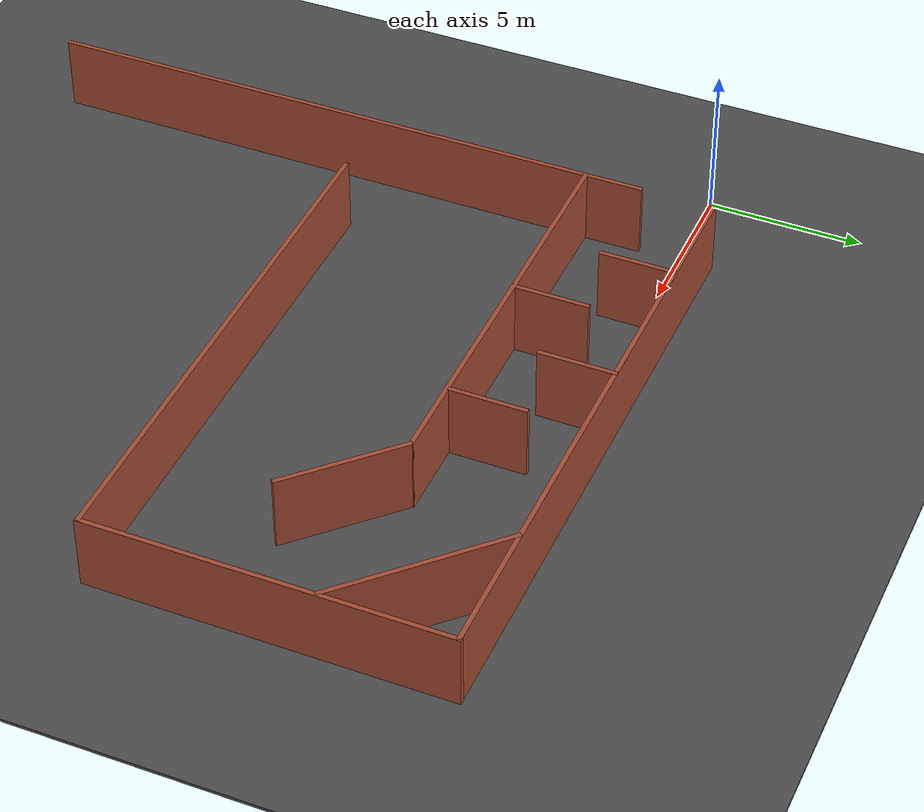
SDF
<sdf version="1.6">
 <world name="default">
  <light name="sun" type="directional">
   <pose>0 0 10 0 -0 0</pose>
   <diffuse>0.8 0.8 0.8 1</diffuse>
   <specular>0.2 0.2 0.2 1</specular>
   <attenuation>
    <range>1000</range>
    <constant>0.9</constant>
    <linear>0.01</linear>
    <quadratic>0.001</quadratic>
   </attenuation>
   <direction>-0.5 0.1 -0.9</direction>
  </light>
  <model name="ground_plane">
   <static>1</static>
   <link name="link">
    <collision name="collision">
     <geometry><plane><normal>0 0 1</normal><size>100 100</size></plane></geometry>
     <surface><friction><ode><mu>100</mu><mu2>50</mu2></ode></friction></surface>
    </collision>
    <visual name="visual">
     <cast_shadows>0</cast_shadows>
     <geometry><plane><normal>0 0 1</normal><size>100 100</size></plane></geometry>
     <material>
      <script><uri>file://media/materials/scripts/gazebo.material</uri><name>Gazebo/Grey</name></script>
     </material>
    </visual>
   </link>
  </model>
  <gravity>0 0 -9.8</gravity>
  <magnetic_field>6e-06 2.3e-05 -4.2e-05</magnetic_field>
  <atmosphere type="adiabatic"/>
  <physics name="default_physics" default="0" type="ode">
   <max_step_size>0.001</max_step_size>
   <real_time_factor>1</real_time_factor>
   <real_time_update_rate>1000</real_time_update_rate>
  </physics>
  <scene><ambient>0.4 0.4 0.4 1</ambient><background>0.7 0.7 0.7 1</background><shadows>1</shadows></scene>
  <spherical_coordinates>
   <surface_model>EARTH_WGS84</surface_model>
   <latitude_deg>0</latitude_deg>
   <longitude_deg>0</longitude_deg>
   <elevation>0</elevation>
   <heading_deg>0</heading_deg>
  </spherical_coordinates>
  <model name="asphalt_plane">
   <static>1</static>
   <link name="link">
    <collision name="collision"><geometry><box><size>74.4702 80.6098 0.1</size></box></geometry></collision>
    <visual name="visual">
     <cast_shadows>0</cast_shadows>
     <geometry><box><size>74.4702 80.6098 0.1</size></box></geometry>
     <material>
      <script>
       <uri>model://asphalt_plane/materials/scripts</uri>
       <uri>model://asphalt_plane/materials/textures</uri>
       <name>vrc/asphalt</name>
      </script>
     </material>
    </visual>
   </link>
   <pose>10.9493 -7.43707 0 0 -0 0</pose>
  </model>
  <model name="arena_walls">
   <link name="Wall_10">
    <pose>-6.5 3.71248 0 0 0 -1.5708</pose>
    <inertial>
     <mass>1</mass>
     <inertia><ixx>1</ixx><ixy>0</ixy><ixz>0</ixz><iyy>1</iyy><iyz>0</iyz><izz>1</izz></inertia>
    </inertial>
    <visual name="Wall_10_Visual">
     <pose>0 0 1.25 0 -0 0</pose>
     <geometry><box><size>2.5 0.15 2.5</size></box></geometry>
     <material>
      <script><uri>file://media/materials/scripts/gazebo.material</uri><name>Gazebo/Bricks</name></script>
      <ambient>1 1 1 1</ambient>
      <shader type="pixel"><normal_map>__default__</normal_map></shader>
      <diffuse>1 1 1 1</diffuse>
      <specular>0.2 0.2 0.2 1</specular>
      <emissive>0 0 0 1</emissive>
     </material>
     <meta><layer>0</layer></meta>
    </visual>
    <collision name="Wall_10_Collision">
     <pose>0 0 1.25 0 -0 0</pose>
     <geometry><box><size>2.5 0.15 2.5</size></box></geometry>
     <surface>
      <friction>
       <ode><mu>1</mu><mu2>1</mu2><fdir1>0 0 0</fdir1><slip1>0</slip1><slip2>0</slip2></ode>
       <torsional>
        <coefficient>1</coefficient>
        <patch_radius>0</patch_radius>
        <surface_radius>0</surface_radius>
        <use_patch_radius>1</use_patch_radius>
        <ode><slip>0</slip></ode>
       </torsional>
      </friction>
      <bounce><restitution_coefficient>0</restitution_coefficient><threshold>1e+06</threshold></bounce>
      <contact>
       <collide_without_contact>0</collide_without_contact>
       <collide_without_contact_bitmask>1</collide_without_contact_bitmask>
       <collide_bitmask>1</collide_bitmask>
       <ode>
        <soft_cfm>0</soft_cfm>
        <soft_erp>0.2</soft_erp>
        <kp>1e+13</kp>
        <kd>1</kd>
        <max_vel>0.01</max_vel>
        <min_depth>0</min_depth>
       </ode>
       <bullet>
        <split_impulse>1</split_impulse>
        <split_impulse_penetration_threshold>-0.01</split_impulse_penetration_threshold>
        <soft_cfm>0</soft_cfm>
        <soft_erp>0.2</soft_erp>
        <kp>1e+13</kp>
        <kd>1</kd>
       </bullet>
      </contact>
     </surface>
    </collision>
   </link>
   <link name="Wall_10_clone_0">
    <pose>-1.5 3.70851 0 0 0 -1.5708</pose>
    <inertial>
     <mass>1</mass>
     <inertia><ixx>1</ixx><ixy>0</ixy><ixz>0</ixz><iyy>1</iyy><iyz>0</iyz><izz>1</izz></inertia>
    </inertial>
    <visual name="Wall_10_Visual">
     <pose>0 0 1.25 0 -0 0</pose>
     <geometry><box><size>2.5 0.15 2.5</size></box></geometry>
     <material>
      <script><uri>file://media/materials/scripts/gazebo.material</uri><name>Gazebo/Bricks</name></script>
      <ambient>1 1 1 1</ambient>
      <shader type="pixel"><normal_map>__default__</normal_map></shader>
      <diffuse>1 1 1 1</diffuse>
      <specular>0.2 0.2 0.2 1</specular>
      <emissive>0 0 0 1</emissive>
     </material>
     <meta><layer>0</layer></meta>
    </visual>
    <collision name="Wall_10_Collision">
     <pose>0 0 1.25 0 -0 0</pose>
     <geometry><box><size>2.5 0.15 2.5</size></box></geometry>
     <surface>
      <friction>
       <ode><mu>1</mu><mu2>1</mu2><fdir1>0 0 0</fdir1><slip1>0</slip1><slip2>0</slip2></ode>
       <torsional>
        <coefficient>1</coefficient>
        <patch_radius>0</patch_radius>
        <surface_radius>0</surface_radius>
        <use_patch_radius>1</use_patch_radius>
        <ode><slip>0</slip></ode>
       </torsional>
      </friction>
      <bounce><restitution_coefficient>0</restitution_coefficient><threshold>1e+06</threshold></bounce>
      <contact>
       <collide_without_contact>0</collide_without_contact>
       <collide_without_contact_bitmask>1</collide_without_contact_bitmask>
       <collide_bitmask>1</collide_bitmask>
       <ode>
        <soft_cfm>0</soft_cfm>
        <soft_erp>0.2</soft_erp>
        <kp>1e+13</kp>
        <kd>1</kd>
        <max_vel>0.01</max_vel>
        <min_depth>0</min_depth>
       </ode>
       <bullet>
        <split_impulse>1</split_impulse>
        <split_impulse_penetration_threshold>-0.01</split_impulse_penetration_threshold>
        <soft_cfm>0</soft_cfm>
        <soft_erp>0.2</soft_erp>
        <kp>1e+13</kp>
        <kd>1</kd>
       </bullet>
      </contact>
     </surface>
    </collision>
   </link>
   <link name="Wall_10_clone_0_clone">
    <pose>-4 1.85792 0 0 0 -1.5708</pose>
    <inertial>
     <mass>1</mass>
     <inertia><ixx>1</ixx><ixy>0</ixy><ixz>0</ixz><iyy>1</iyy><iyz>0</iyz><izz>1</izz></inertia>
    </inertial>
    <visual name="Wall_10_Visual">
     <pose>0 0 1.25 0 -0 0</pose>
     <geometry><box><size>2.5 0.15 2.5</size></box></geometry>
     <material>
      <script><uri>file://media/materials/scripts/gazebo.material</uri><name>Gazebo/Bricks</name></script>
      <ambient>1 1 1 1</ambient>
      <shader type="pixel"><normal_map>__default__</normal_map></shader>
      <diffuse>1 1 1 1</diffuse>
      <specular>0.2 0.2 0.2 1</specular>
      <emissive>0 0 0 1</emissive>
     </material>
     <meta><layer>0</layer></meta>
    </visual>
    <collision name="Wall_10_Collision">
     <pose>0 0 1.25 0 -0 0</pose>
     <geometry><box><size>2.5 0.15 2.5</size></box></geometry>
     <surface>
      <friction>
       <ode><mu>1</mu><mu2>1</mu2><fdir1>0 0 0</fdir1><slip1>0</slip1><slip2>0</slip2></ode>
       <torsional>
        <coefficient>1</coefficient>
        <patch_radius>0</patch_radius>
        <surface_radius>0</surface_radius>
        <use_patch_radius>1</use_patch_radius>
        <ode><slip>0</slip></ode>
       </torsional>
      </friction>
      <bounce><restitution_coefficient>0</restitution_coefficient><threshold>1e+06</threshold></bounce>
      <contact>
       <collide_without_contact>0</collide_without_contact>
       <collide_without_contact_bitmask>1</collide_without_contact_bitmask>
       <collide_bitmask>1</collide_bitmask>
       <ode>
        <soft_cfm>0</soft_cfm>
        <soft_erp>0.2</soft_erp>
        <kp>1e+13</kp>
        <kd>1</kd>
        <max_vel>0.01</max_vel>
        <min_depth>0</min_depth>
       </ode>
       <bullet>
        <split_impulse>1</split_impulse>
        <split_impulse_penetration_threshold>-0.01</split_impulse_penetration_threshold>
        <soft_cfm>0</soft_cfm>
        <soft_erp>0.2</soft_erp>
        <kp>1e+13</kp>
        <kd>1</kd>
       </bullet>
      </contact>
     </surface>
    </collision>
   </link>
   <link name="Wall_10_clone_0_clone_2">
    <pose>1 1.94635 0 0 0 -1.5708</pose>
    <inertial>
     <mass>1</mass>
     <inertia><ixx>1</ixx><ixy>0</ixy><ixz>0</ixz><iyy>1</iyy><iyz>0</iyz><izz>1</izz></inertia>
    </inertial>
    <visual name="Wall_10_Visual">
     <pose>0 0 1.25 0 -0 0</pose>
     <geometry><box><size>2.5 0.15 2.5</size></box></geometry>
     <material>
      <script><uri>file://media/materials/scripts/gazebo.material</uri><name>Gazebo/Bricks</name></script>
      <ambient>1 1 1 1</ambient>
      <shader type="pixel"><normal_map>__default__</normal_map></shader>
      <diffuse>1 1 1 1</diffuse>
      <specular>0.2 0.2 0.2 1</specular>
      <emissive>0 0 0 1</emissive>
     </material>
     <meta><layer>0</layer></meta>
    </visual>
    <collision name="Wall_10_Collision">
     <pose>0 0 1.25 0 -0 0</pose>
     <geometry><box><size>2.5 0.15 2.5</size></box></geometry>
     <surface>
      <friction>
       <ode><mu>1</mu><mu2>1</mu2><fdir1>0 0 0</fdir1><slip1>0</slip1><slip2>0</slip2></ode>
       <torsional>
        <coefficient>1</coefficient>
        <patch_radius>0</patch_radius>
        <surface_radius>0</surface_radius>
        <use_patch_radius>1</use_patch_radius>
        <ode><slip>0</slip></ode>
       </torsional>
      </friction>
      <bounce><restitution_coefficient>0</restitution_coefficient><threshold>1e+06</threshold></bounce>
      <contact>
       <collide_without_contact>0</collide_without_contact>
       <collide_without_contact_bitmask>1</collide_without_contact_bitmask>
       <collide_bitmask>1</collide_bitmask>
       <ode>
        <soft_cfm>0</soft_cfm>
        <soft_erp>0.2</soft_erp>
        <kp>1e+13</kp>
        <kd>1</kd>
        <max_vel>0.01</max_vel>
        <min_depth>0</min_depth>
       </ode>
       <bullet>
        <split_impulse>1</split_impulse>
        <split_impulse_penetration_threshold>-0.01</split_impulse_penetration_threshold>
        <soft_cfm>0</soft_cfm>
        <soft_erp>0.2</soft_erp>
        <kp>1e+13</kp>
        <kd>1</kd>
       </bullet>
      </contact>
     </surface>
    </collision>
   </link>
   <link name="Wall_10_clone_0_clone_2_clone">
    <pose>7.82658 2.81474 0 0 0 -0.78</pose>
    <inertial>
     <mass>2.38801</mass>
     <inertia><ixx>1.24823</ixx><ixy>0</ixy><ixz>0</ixz><iyy>8.33641</iyy><iyz>0</iyz><izz>7.09713</izz></inertia>
    </inertial>
    <visual name="Wall_10_Visual">
     <pose>0 0 1.25 0 -0 0</pose>
     <geometry><box><size>5.97003 0.15 2.5</size></box></geometry>
     <material>
      <script><uri>file://media/materials/scripts/gazebo.material</uri><name>Gazebo/Bricks</name></script>
      <ambient>1 1 1 1</ambient>
      <shader type="pixel"><normal_map>__default__</normal_map></shader>
      <diffuse>1 1 1 1</diffuse>
      <specular>0.2 0.2 0.2 1</specular>
      <emissive>0 0 0 1</emissive>
     </material>
     <meta><layer>0</layer></meta>
    </visual>
    <collision name="Wall_10_Collision">
     <pose>0 0 1.25 0 -0 0</pose>
     <geometry><box><size>5.97003 0.15 2.5</size></box></geometry>
     <surface>
      <friction>
       <ode><mu>1</mu><mu2>1</mu2><fdir1>0 0 0</fdir1><slip1>0</slip1><slip2>0</slip2></ode>
       <torsional>
        <coefficient>1</coefficient>
        <patch_radius>0</patch_radius>
        <surface_radius>0</surface_radius>
        <use_patch_radius>1</use_patch_radius>
        <ode><slip>0</slip></ode>
       </torsional>
      </friction>
      <bounce><restitution_coefficient>0</restitution_coefficient><threshold>1e+06</threshold></bounce>
      <contact>
       <collide_without_contact>0</collide_without_contact>
       <collide_without_contact_bitmask>1</collide_without_contact_bitmask>
       <collide_bitmask>1</collide_bitmask>
       <ode>
        <soft_cfm>0</soft_cfm>
        <soft_erp>0.2</soft_erp>
        <kp>1e+13</kp>
        <kd>1</kd>
        <max_vel>0.01</max_vel>
        <min_depth>0</min_depth>
       </ode>
       <bullet>
        <split_impulse>1</split_impulse>
        <split_impulse_penetration_threshold>-0.01</split_impulse_penetration_threshold>
        <soft_cfm>0</soft_cfm>
        <soft_erp>0.2</soft_erp>
        <kp>1e+13</kp>
        <kd>1</kd>
       </bullet>
      </contact>
     </surface>
    </collision>
   </link>
   <link name="Wall_10_clone_0_clone_2_clone_clone">
    <pose>5.00738 -0.779801 0 0 0 -0.78</pose>
    <inertial>
     <mass>1.67623</mass>
     <inertia><ixx>0.876179</ixx><ixy>0</ixy><ixz>0</ixz><iyy>3.32605</iyy><iyz>0</iyz><izz>2.45615</izz></inertia>
    </inertial>
    <visual name="Wall_10_Visual">
     <pose>0 0 1.25 0 -0 0</pose>
     <geometry><box><size>4.19058 0.15 2.5</size></box></geometry>
     <material>
      <script><uri>file://media/materials/scripts/gazebo.material</uri><name>Gazebo/Bricks</name></script>
      <ambient>1 1 1 1</ambient>
      <shader type="pixel"><normal_map>__default__</normal_map></shader>
      <diffuse>1 1 1 1</diffuse>
      <specular>0.2 0.2 0.2 1</specular>
      <emissive>0 0 0 1</emissive>
     </material>
     <meta><layer>0</layer></meta>
    </visual>
    <collision name="Wall_10_Collision">
     <pose>0 0 1.25 0 -0 0</pose>
     <geometry><box><size>4.19058 0.15 2.5</size></box></geometry>
     <surface>
      <friction>
       <ode><mu>1</mu><mu2>1</mu2><fdir1>0 0 0</fdir1><slip1>0</slip1><slip2>0</slip2></ode>
       <torsional>
        <coefficient>1</coefficient>
        <patch_radius>0</patch_radius>
        <surface_radius>0</surface_radius>
        <use_patch_radius>1</use_patch_radius>
        <ode><slip>0</slip></ode>
       </torsional>
      </friction>
      <bounce><restitution_coefficient>0</restitution_coefficient><threshold>1e+06</threshold></bounce>
      <contact>
       <collide_without_contact>0</collide_without_contact>
       <collide_without_contact_bitmask>1</collide_without_contact_bitmask>
       <collide_bitmask>1</collide_bitmask>
       <ode>
        <soft_cfm>0</soft_cfm>
        <soft_erp>0.2</soft_erp>
        <kp>1e+13</kp>
        <kd>1</kd>
        <max_vel>0.01</max_vel>
        <min_depth>0</min_depth>
       </ode>
       <bullet>
        <split_impulse>1</split_impulse>
        <split_impulse_penetration_threshold>-0.01</split_impulse_penetration_threshold>
        <soft_cfm>0</soft_cfm>
        <soft_erp>0.2</soft_erp>
        <kp>1e+13</kp>
        <kd>1</kd>
       </bullet>
      </contact>
     </surface>
    </collision>
   </link>
   <link name="Wall_13">
    <pose>-3.19445 0.669302 0 0 -0 3.14159</pose>
    <inertial>
     <mass>1.35897</mass>
     <inertia><ixx>0.710346</ixx><ixy>0</ixy><ixz>0</ixz><iyy>21.6225</iyy><iyz>0</iyz><izz>20.9172</izz></inertia>
    </inertial>
    <visual name="Wall_13_Visual">
     <pose>0 0 1.25 0 -0 0</pose>
     <geometry><box><size>13.5897 0.15 2.5</size></box></geometry>
     <material>
      <script><uri>file://media/materials/scripts/gazebo.material</uri><name>Gazebo/Bricks</name></script>
      <ambient>1 1 1 1</ambient>
      <shader type="pixel"><normal_map>__default__</normal_map></shader>
      <diffuse>1 1 1 1</diffuse>
      <specular>0.2 0.2 0.2 1</specular>
      <emissive>0 0 0 1</emissive>
     </material>
     <meta><layer>0</layer></meta>
    </visual>
    <collision name="Wall_13_Collision">
     <pose>0 0 1.25 0 -0 0</pose>
     <geometry><box><size>13.5897 0.15 2.5</size></box></geometry>
     <surface>
      <friction>
       <ode><mu>1</mu><mu2>1</mu2><fdir1>0 0 0</fdir1><slip1>0</slip1><slip2>0</slip2></ode>
       <torsional>
        <coefficient>1</coefficient>
        <patch_radius>0</patch_radius>
        <surface_radius>0</surface_radius>
        <use_patch_radius>1</use_patch_radius>
        <ode><slip>0</slip></ode>
       </torsional>
      </friction>
      <bounce><restitution_coefficient>0</restitution_coefficient><threshold>1e+06</threshold></bounce>
      <contact>
       <collide_without_contact>0</collide_without_contact>
       <collide_without_contact_bitmask>1</collide_without_contact_bitmask>
       <collide_bitmask>1</collide_bitmask>
       <ode>
        <soft_cfm>0</soft_cfm>
        <soft_erp>0.2</soft_erp>
        <kp>1e+13</kp>
        <kd>1</kd>
        <max_vel>0.01</max_vel>
        <min_depth>0</min_depth>
       </ode>
       <bullet>
        <split_impulse>1</split_impulse>
        <split_impulse_penetration_threshold>-0.01</split_impulse_penetration_threshold>
        <soft_cfm>0</soft_cfm>
        <soft_erp>0.2</soft_erp>
        <kp>1e+13</kp>
        <kd>1</kd>
       </bullet>
      </contact>
     </surface>
    </collision>
   </link>
   <link name="Wall_2">
    <pose>0.003794 4.89766 0 0 -0 0</pose>
    <inertial>
     <mass>1</mass>
     <inertia><ixx>1</ixx><ixy>0</ixy><ixz>0</ixz><iyy>1</iyy><iyz>0</iyz><izz>1</izz></inertia>
    </inertial>
    <visual name="Wall_2_Visual">
     <pose>0 0 1.25 0 -0 0</pose>
     <geometry><box><size>20 0.15 2.5</size></box></geometry>
     <material>
      <script><uri>file://media/materials/scripts/gazebo.material</uri><name>Gazebo/Bricks</name></script>
      <ambient>1 1 1 1</ambient>
      <shader type="pixel"><normal_map>__default__</normal_map></shader>
      <diffuse>1 1 1 1</diffuse>
      <specular>0.2 0.2 0.2 1</specular>
      <emissive>0 0 0 1</emissive>
     </material>
     <meta><layer>0</layer></meta>
    </visual>
    <collision name="Wall_2_Collision">
     <pose>0 0 1.25 0 -0 0</pose>
     <geometry><box><size>20 0.15 2.5</size></box></geometry>
     <surface>
      <friction>
       <ode><mu>1</mu><mu2>1</mu2><fdir1>0 0 0</fdir1><slip1>0</slip1><slip2>0</slip2></ode>
       <torsional>
        <coefficient>1</coefficient>
        <patch_radius>0</patch_radius>
        <surface_radius>0</surface_radius>
        <use_patch_radius>1</use_patch_radius>
        <ode><slip>0</slip></ode>
       </torsional>
      </friction>
      <bounce><restitution_coefficient>0</restitution_coefficient><threshold>1e+06</threshold></bounce>
      <contact>
       <collide_without_contact>0</collide_without_contact>
       <collide_without_contact_bitmask>1</collide_without_contact_bitmask>
       <collide_bitmask>1</collide_bitmask>
       <ode>
        <soft_cfm>0</soft_cfm>
        <soft_erp>0.2</soft_erp>
        <kp>1e+13</kp>
        <kd>1</kd>
        <max_vel>0.01</max_vel>
        <min_depth>0</min_depth>
       </ode>
       <bullet>
        <split_impulse>1</split_impulse>
        <split_impulse_penetration_threshold>-0.01</split_impulse_penetration_threshold>
        <soft_cfm>0</soft_cfm>
        <soft_erp>0.2</soft_erp>
        <kp>1e+13</kp>
        <kd>1</kd>
       </bullet>
      </contact>
     </surface>
    </collision>
   </link>
   <link name="Wall_2_clone">
    <pose>1.24205 -6.48449 0 0 -0 0</pose>
    <inertial>
     <mass>1</mass>
     <inertia><ixx>1</ixx><ixy>0</ixy><ixz>0</ixz><iyy>1</iyy><iyz>0</iyz><izz>1</izz></inertia>
    </inertial>
    <visual name="Wall_2_Visual">
     <pose>0 0 1.25 0 -0 0</pose>
     <geometry><box><size>17.5 0.15 2.5</size></box></geometry>
     <material>
      <script><uri>file://media/materials/scripts/gazebo.material</uri><name>Gazebo/Bricks</name></script>
      <ambient>1 1 1 1</ambient>
      <shader type="pixel"><normal_map>__default__</normal_map></shader>
      <diffuse>1 1 1 1</diffuse>
      <specular>0.2 0.2 0.2 1</specular>
      <emissive>0 0 0 1</emissive>
     </material>
     <meta><layer>0</layer></meta>
    </visual>
    <collision name="Wall_2_Collision">
     <pose>0 0 1.25 0 -0 0</pose>
     <geometry><box><size>17.5 0.15 2.5</size></box></geometry>
     <surface>
      <friction>
       <ode><mu>1</mu><mu2>1</mu2><fdir1>0 0 0</fdir1><slip1>0</slip1><slip2>0</slip2></ode>
       <torsional>
        <coefficient>1</coefficient>
        <patch_radius>0</patch_radius>
        <surface_radius>0</surface_radius>
        <use_patch_radius>1</use_patch_radius>
        <ode><slip>0</slip></ode>
       </torsional>
      </friction>
      <bounce><restitution_coefficient>0</restitution_coefficient><threshold>1e+06</threshold></bounce>
      <contact>
       <collide_without_contact>0</collide_without_contact>
       <collide_without_contact_bitmask>1</collide_without_contact_bitmask>
       <collide_bitmask>1</collide_bitmask>
       <ode>
        <soft_cfm>0</soft_cfm>
        <soft_erp>0.2</soft_erp>
        <kp>1e+13</kp>
        <kd>1</kd>
        <max_vel>0.01</max_vel>
        <min_depth>0</min_depth>
       </ode>
       <bullet>
        <split_impulse>1</split_impulse>
        <split_impulse_penetration_threshold>-0.01</split_impulse_penetration_threshold>
        <soft_cfm>0</soft_cfm>
        <soft_erp>0.2</soft_erp>
        <kp>1e+13</kp>
        <kd>1</kd>
       </bullet>
      </contact>
     </surface>
    </collision>
   </link>
   <link name="Wall_4">
    <pose>9.94646 -0.804145 0 0 0 -1.5708</pose>
    <inertial>
     <inertia><ixx>0</ixx><ixy>0</ixy><ixz>0</ixz><iyy>0</iyy><iyz>0</iyz><izz>0</izz></inertia>
     <mass>0</mass>
    </inertial>
    <visual name="Wall_4_Visual">
     <pose>0 0 1.25 0 -0 0</pose>
     <geometry><box><size>11.5685 0.15 2.5</size></box></geometry>
     <material>
      <script><uri>file://media/materials/scripts/gazebo.material</uri><name>Gazebo/Bricks</name></script>
      <ambient>1 1 1 1</ambient>
      <shader type="pixel"><normal_map>__default__</normal_map></shader>
      <diffuse>1 1 1 1</diffuse>
      <specular>0.2 0.2 0.2 1</specular>
      <emissive>0 0 0 1</emissive>
     </material>
     <meta><layer>0</layer></meta>
    </visual>
    <collision name="Wall_4_Collision">
     <pose>0 0 1.25 0 -0 0</pose>
     <geometry><box><size>11.5685 0.15 2.5</size></box></geometry>
     <surface>
      <friction>
       <ode><mu>1</mu><mu2>1</mu2><fdir1>0 0 0</fdir1><slip1>0</slip1><slip2>0</slip2></ode>
       <torsional>
        <coefficient>1</coefficient>
        <patch_radius>0</patch_radius>
        <surface_radius>0</surface_radius>
        <use_patch_radius>1</use_patch_radius>
        <ode><slip>0</slip></ode>
       </torsional>
      </friction>
      <bounce><restitution_coefficient>0</restitution_coefficient><threshold>1e+06</threshold></bounce>
      <contact>
       <collide_without_contact>0</collide_without_contact>
       <collide_without_contact_bitmask>1</collide_without_contact_bitmask>
       <collide_bitmask>1</collide_bitmask>
       <ode>
        <soft_cfm>0</soft_cfm>
        <soft_erp>0.2</soft_erp>
        <kp>1e+13</kp>
        <kd>1</kd>
        <max_vel>0.01</max_vel>
        <min_depth>0</min_depth>
       </ode>
       <bullet>
        <split_impulse>1</split_impulse>
        <split_impulse_penetration_threshold>-0.01</split_impulse_penetration_threshold>
        <soft_cfm>0</soft_cfm>
        <soft_erp>0.2</soft_erp>
        <kp>1e+13</kp>
        <kd>1</kd>
       </bullet>
      </contact>
     </surface>
    </collision>
   </link>
   <link name="Wall_4_clone">
    <pose>-9.92044 -7.60821 0 0 0 -1.5708</pose>
    <inertial>
     <inertia><ixx>0</ixx><ixy>0</ixy><ixz>0</ixz><iyy>0</iyy><iyz>0</iyz><izz>0</izz></inertia>
     <mass>0</mass>
    </inertial>
    <visual name="Wall_4_Visual">
     <pose>0 0 1.25 0 -0 0</pose>
     <geometry><box><size>20.3295 0.15 2.5</size></box></geometry>
     <material>
      <script><uri>file://media/materials/scripts/gazebo.material</uri><name>Gazebo/Bricks</name></script>
      <ambient>1 1 1 1</ambient>
      <shader type="pixel"><normal_map>__default__</normal_map></shader>
      <diffuse>1 1 1 1</diffuse>
      <specular>0.2 0.2 0.2 1</specular>
      <emissive>0 0 0 1</emissive>
     </material>
     <meta><layer>0</layer></meta>
    </visual>
    <collision name="Wall_4_Collision">
     <pose>0 0 1.25 0 -0 0</pose>
     <geometry><box><size>20.3295 0.15 2.5</size></box></geometry>
     <surface>
      <friction>
       <ode><mu>1</mu><mu2>1</mu2><fdir1>0 0 0</fdir1><slip1>0</slip1><slip2>0</slip2></ode>
       <torsional>
        <coefficient>1</coefficient>
        <patch_radius>0</patch_radius>
        <surface_radius>0</surface_radius>
        <use_patch_radius>1</use_patch_radius>
        <ode><slip>0</slip></ode>
       </torsional>
      </friction>
      <bounce><restitution_coefficient>0</restitution_coefficient><threshold>1e+06</threshold></bounce>
      <contact>
       <collide_without_contact>0</collide_without_contact>
       <collide_without_contact_bitmask>1</collide_without_contact_bitmask>
       <collide_bitmask>1</collide_bitmask>
       <ode>
        <soft_cfm>0</soft_cfm>
        <soft_erp>0.2</soft_erp>
        <kp>1e+13</kp>
        <kd>1</kd>
        <max_vel>0.01</max_vel>
        <min_depth>0</min_depth>
       </ode>
       <bullet>
        <split_impulse>1</split_impulse>
        <split_impulse_penetration_threshold>-0.01</split_impulse_penetration_threshold>
        <soft_cfm>0</soft_cfm>
        <soft_erp>0.2</soft_erp>
        <kp>1e+13</kp>
        <kd>1</kd>
       </bullet>
      </contact>
     </surface>
    </collision>
   </link>
   <static>1</static>
   <pose>13.0468 -3.86511 0 0 -0 0</pose>
  </model>
 </world>
</sdf>
